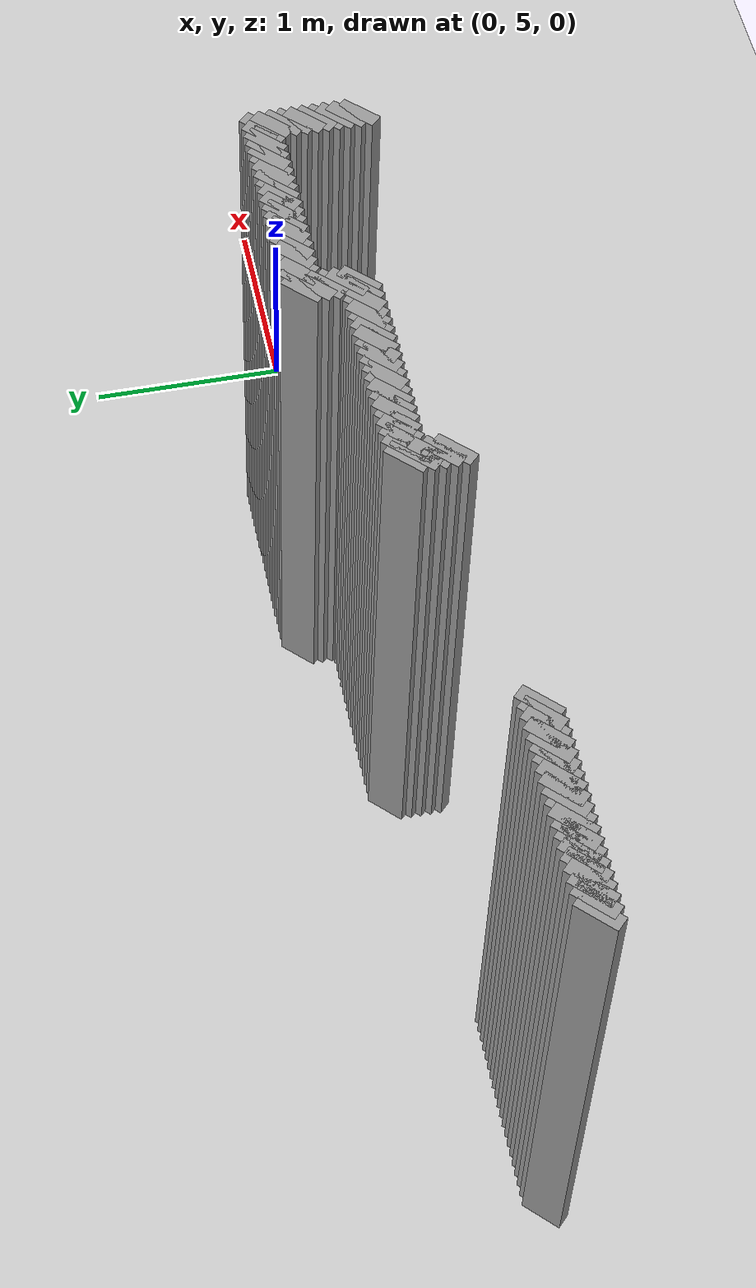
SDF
<sdf version="1.5">
 <world name="default">
  <include><uri>model://ground_plane</uri></include>
  <include><uri>model://sun</uri></include>
  <model name="grey_wall_1">
   <static>1</static>
   <link name="link">
    <pose>-1.875 5.225  1.4 0 0 -0.785398163397</pose>
    <collision name="collision"><geometry><box><size>0.0707106781187 .2  2.8</size></box></geometry></collision>
    <visual name="visual">
     <cast_shadows>0</cast_shadows>
     <geometry><box><size>0.0707106781187 .2  2.8</size></box></geometry>
     <material>
      <script>
       <uri>model://grey_wall/materials/scripts</uri>
       <uri>model://grey_wall/materials/textures</uri>
       <name>vrc/grey_wall</name>
      </script>
     </material>
    </visual>
   </link>
  </model>
  <model name="grey_wall_2">
   <static>1</static>
   <link name="link">
    <pose>-1.825 5.225  1.4 0 0 -0.785398163397</pose>
    <collision name="collision"><geometry><box><size>0.0707106781187 .2  2.8</size></box></geometry></collision>
    <visual name="visual">
     <cast_shadows>0</cast_shadows>
     <geometry><box><size>0.0707106781187 .2  2.8</size></box></geometry>
     <material>
      <script>
       <uri>model://grey_wall/materials/scripts</uri>
       <uri>model://grey_wall/materials/textures</uri>
       <name>vrc/grey_wall</name>
      </script>
     </material>
    </visual>
   </link>
  </model>
  <model name="grey_wall_3">
   <static>1</static>
   <link name="link">
    <pose>-1.775 5.225  1.4 0 0 -0.785398163397</pose>
    <collision name="collision"><geometry><box><size>0.0707106781187 .2  2.8</size></box></geometry></collision>
    <visual name="visual">
     <cast_shadows>0</cast_shadows>
     <geometry><box><size>0.0707106781187 .2  2.8</size></box></geometry>
     <material>
      <script>
       <uri>model://grey_wall/materials/scripts</uri>
       <uri>model://grey_wall/materials/textures</uri>
       <name>vrc/grey_wall</name>
      </script>
     </material>
    </visual>
   </link>
  </model>
  <model name="grey_wall_4">
   <static>1</static>
   <link name="link">
    <pose>-1.725 5.225  1.4 0 0 -0.785398163397</pose>
    <collision name="collision"><geometry><box><size>0.0707106781187 .2  2.8</size></box></geometry></collision>
    <visual name="visual">
     <cast_shadows>0</cast_shadows>
     <geometry><box><size>0.0707106781187 .2  2.8</size></box></geometry>
     <material>
      <script>
       <uri>model://grey_wall/materials/scripts</uri>
       <uri>model://grey_wall/materials/textures</uri>
       <name>vrc/grey_wall</name>
      </script>
     </material>
    </visual>
   </link>
  </model>
  <model name="grey_wall_5">
   <static>1</static>
   <link name="link">
    <pose>-1.675 5.225  1.4 0 0 -0.785398163397</pose>
    <collision name="collision"><geometry><box><size>0.0707106781187 .2  2.8</size></box></geometry></collision>
    <visual name="visual">
     <cast_shadows>0</cast_shadows>
     <geometry><box><size>0.0707106781187 .2  2.8</size></box></geometry>
     <material>
      <script>
       <uri>model://grey_wall/materials/scripts</uri>
       <uri>model://grey_wall/materials/textures</uri>
       <name>vrc/grey_wall</name>
      </script>
     </material>
    </visual>
   </link>
  </model>
  <model name="grey_wall_6">
   <static>1</static>
   <link name="link">
    <pose>-1.625 5.225  1.4 0 0 -0.785398163397</pose>
    <collision name="collision"><geometry><box><size>0.0707106781187 .2  2.8</size></box></geometry></collision>
    <visual name="visual">
     <cast_shadows>0</cast_shadows>
     <geometry><box><size>0.0707106781187 .2  2.8</size></box></geometry>
     <material>
      <script>
       <uri>model://grey_wall/materials/scripts</uri>
       <uri>model://grey_wall/materials/textures</uri>
       <name>vrc/grey_wall</name>
      </script>
     </material>
    </visual>
   </link>
  </model>
  <model name="grey_wall_7">
   <static>1</static>
   <link name="link">
    <pose>-1.575 5.225  1.4 0 0 -0.785398163397</pose>
    <collision name="collision"><geometry><box><size>0.0707106781187 .2  2.8</size></box></geometry></collision>
    <visual name="visual">
     <cast_shadows>0</cast_shadows>
     <geometry><box><size>0.0707106781187 .2  2.8</size></box></geometry>
     <material>
      <script>
       <uri>model://grey_wall/materials/scripts</uri>
       <uri>model://grey_wall/materials/textures</uri>
       <name>vrc/grey_wall</name>
      </script>
     </material>
    </visual>
   </link>
  </model>
  <model name="grey_wall_8">
   <static>1</static>
   <link name="link">
    <pose>-1.525 5.225  1.4 0 0 -0.785398163397</pose>
    <collision name="collision"><geometry><box><size>0.0707106781187 .2  2.8</size></box></geometry></collision>
    <visual name="visual">
     <cast_shadows>0</cast_shadows>
     <geometry><box><size>0.0707106781187 .2  2.8</size></box></geometry>
     <material>
      <script>
       <uri>model://grey_wall/materials/scripts</uri>
       <uri>model://grey_wall/materials/textures</uri>
       <name>vrc/grey_wall</name>
      </script>
     </material>
    </visual>
   </link>
  </model>
  <model name="grey_wall_9">
   <static>1</static>
   <link name="link">
    <pose>-1.475 5.225  1.4 0 0 -0.785398163397</pose>
    <collision name="collision"><geometry><box><size>0.0707106781187 .2  2.8</size></box></geometry></collision>
    <visual name="visual">
     <cast_shadows>0</cast_shadows>
     <geometry><box><size>0.0707106781187 .2  2.8</size></box></geometry>
     <material>
      <script>
       <uri>model://grey_wall/materials/scripts</uri>
       <uri>model://grey_wall/materials/textures</uri>
       <name>vrc/grey_wall</name>
      </script>
     </material>
    </visual>
   </link>
  </model>
  <model name="grey_wall_10">
   <static>1</static>
   <link name="link">
    <pose>-1.425 5.225  1.4 0 0 -0.785398163397</pose>
    <collision name="collision"><geometry><box><size>0.0707106781187 .2  2.8</size></box></geometry></collision>
    <visual name="visual">
     <cast_shadows>0</cast_shadows>
     <geometry><box><size>0.0707106781187 .2  2.8</size></box></geometry>
     <material>
      <script>
       <uri>model://grey_wall/materials/scripts</uri>
       <uri>model://grey_wall/materials/textures</uri>
       <name>vrc/grey_wall</name>
      </script>
     </material>
    </visual>
   </link>
  </model>
  <model name="grey_wall_11">
   <static>1</static>
   <link name="link">
    <pose>-1.375 5.225  1.4 0 0 -0.785398163397</pose>
    <collision name="collision"><geometry><box><size>0.0707106781187 .2  2.8</size></box></geometry></collision>
    <visual name="visual">
     <cast_shadows>0</cast_shadows>
     <geometry><box><size>0.0707106781187 .2  2.8</size></box></geometry>
     <material>
      <script>
       <uri>model://grey_wall/materials/scripts</uri>
       <uri>model://grey_wall/materials/textures</uri>
       <name>vrc/grey_wall</name>
      </script>
     </material>
    </visual>
   </link>
  </model>
  <model name="grey_wall_12">
   <static>1</static>
   <link name="link">
    <pose>-1.325 5.225  1.4 0 0 -0.785398163397</pose>
    <collision name="collision"><geometry><box><size>0.0707106781187 .2  2.8</size></box></geometry></collision>
    <visual name="visual">
     <cast_shadows>0</cast_shadows>
     <geometry><box><size>0.0707106781187 .2  2.8</size></box></geometry>
     <material>
      <script>
       <uri>model://grey_wall/materials/scripts</uri>
       <uri>model://grey_wall/materials/textures</uri>
       <name>vrc/grey_wall</name>
      </script>
     </material>
    </visual>
   </link>
  </model>
  <model name="grey_wall_13">
   <static>1</static>
   <link name="link">
    <pose>-1.275 5.225  1.4 0 0 -0.785398163397</pose>
    <collision name="collision"><geometry><box><size>0.0707106781187 .2  2.8</size></box></geometry></collision>
    <visual name="visual">
     <cast_shadows>0</cast_shadows>
     <geometry><box><size>0.0707106781187 .2  2.8</size></box></geometry>
     <material>
      <script>
       <uri>model://grey_wall/materials/scripts</uri>
       <uri>model://grey_wall/materials/textures</uri>
       <name>vrc/grey_wall</name>
      </script>
     </material>
    </visual>
   </link>
  </model>
  <model name="grey_wall_14">
   <static>1</static>
   <link name="link">
    <pose>-1.225 5.225  1.4 0 0 -0.785398163397</pose>
    <collision name="collision"><geometry><box><size>0.0707106781187 .2  2.8</size></box></geometry></collision>
    <visual name="visual">
     <cast_shadows>0</cast_shadows>
     <geometry><box><size>0.0707106781187 .2  2.8</size></box></geometry>
     <material>
      <script>
       <uri>model://grey_wall/materials/scripts</uri>
       <uri>model://grey_wall/materials/textures</uri>
       <name>vrc/grey_wall</name>
      </script>
     </material>
    </visual>
   </link>
  </model>
  <model name="grey_wall_15">
   <static>1</static>
   <link name="link">
    <pose>-1.175 5.225  1.4 0 0 -0.785398163397</pose>
    <collision name="collision"><geometry><box><size>0.0707106781187 .2  2.8</size></box></geometry></collision>
    <visual name="visual">
     <cast_shadows>0</cast_shadows>
     <geometry><box><size>0.0707106781187 .2  2.8</size></box></geometry>
     <material>
      <script>
       <uri>model://grey_wall/materials/scripts</uri>
       <uri>model://grey_wall/materials/textures</uri>
       <name>vrc/grey_wall</name>
      </script>
     </material>
    </visual>
   </link>
  </model>
  <model name="grey_wall_16">
   <static>1</static>
   <link name="link">
    <pose>-1.125 5.225  1.4 0 0 -0.785398163397</pose>
    <collision name="collision"><geometry><box><size>0.0707106781187 .2  2.8</size></box></geometry></collision>
    <visual name="visual">
     <cast_shadows>0</cast_shadows>
     <geometry><box><size>0.0707106781187 .2  2.8</size></box></geometry>
     <material>
      <script>
       <uri>model://grey_wall/materials/scripts</uri>
       <uri>model://grey_wall/materials/textures</uri>
       <name>vrc/grey_wall</name>
      </script>
     </material>
    </visual>
   </link>
  </model>
  <model name="grey_wall_17">
   <static>1</static>
   <link name="link">
    <pose>-1.075 5.225  1.4 0 0 -0.785398163397</pose>
    <collision name="collision"><geometry><box><size>0.0707106781187 .2  2.8</size></box></geometry></collision>
    <visual name="visual">
     <cast_shadows>0</cast_shadows>
     <geometry><box><size>0.0707106781187 .2  2.8</size></box></geometry>
     <material>
      <script>
       <uri>model://grey_wall/materials/scripts</uri>
       <uri>model://grey_wall/materials/textures</uri>
       <name>vrc/grey_wall</name>
      </script>
     </material>
    </visual>
   </link>
  </model>
  <model name="grey_wall_18">
   <static>1</static>
   <link name="link">
    <pose>-1.025 5.225  1.4 0 0 -0.785398163397</pose>
    <collision name="collision"><geometry><box><size>0.0707106781187 .2  2.8</size></box></geometry></collision>
    <visual name="visual">
     <cast_shadows>0</cast_shadows>
     <geometry><box><size>0.0707106781187 .2  2.8</size></box></geometry>
     <material>
      <script>
       <uri>model://grey_wall/materials/scripts</uri>
       <uri>model://grey_wall/materials/textures</uri>
       <name>vrc/grey_wall</name>
      </script>
     </material>
    </visual>
   </link>
  </model>
  <model name="grey_wall_19">
   <static>1</static>
   <link name="link">
    <pose>-0.975 5.225  1.4 0 0 -0.785398163397</pose>
    <collision name="collision"><geometry><box><size>0.0707106781187 .2  2.8</size></box></geometry></collision>
    <visual name="visual">
     <cast_shadows>0</cast_shadows>
     <geometry><box><size>0.0707106781187 .2  2.8</size></box></geometry>
     <material>
      <script>
       <uri>model://grey_wall/materials/scripts</uri>
       <uri>model://grey_wall/materials/textures</uri>
       <name>vrc/grey_wall</name>
      </script>
     </material>
    </visual>
   </link>
  </model>
  <model name="grey_wall_20">
   <static>1</static>
   <link name="link">
    <pose>-0.925 5.225  1.4 0 0 -0.785398163397</pose>
    <collision name="collision"><geometry><box><size>0.0707106781187 .2  2.8</size></box></geometry></collision>
    <visual name="visual">
     <cast_shadows>0</cast_shadows>
     <geometry><box><size>0.0707106781187 .2  2.8</size></box></geometry>
     <material>
      <script>
       <uri>model://grey_wall/materials/scripts</uri>
       <uri>model://grey_wall/materials/textures</uri>
       <name>vrc/grey_wall</name>
      </script>
     </material>
    </visual>
   </link>
  </model>
  <model name="grey_wall_21">
   <static>1</static>
   <link name="link">
    <pose>-0.875 5.225  1.4 0 0 -0.785398163397</pose>
    <collision name="collision"><geometry><box><size>0.0707106781187 .2  2.8</size></box></geometry></collision>
    <visual name="visual">
     <cast_shadows>0</cast_shadows>
     <geometry><box><size>0.0707106781187 .2  2.8</size></box></geometry>
     <material>
      <script>
       <uri>model://grey_wall/materials/scripts</uri>
       <uri>model://grey_wall/materials/textures</uri>
       <name>vrc/grey_wall</name>
      </script>
     </material>
    </visual>
   </link>
  </model>
  <model name="grey_wall_22">
   <static>1</static>
   <link name="link">
    <pose>-1.875 5.175  1.4 0 0 -0.785398163397</pose>
    <collision name="collision"><geometry><box><size>0.0707106781187 .2  2.8</size></box></geometry></collision>
    <visual name="visual">
     <cast_shadows>0</cast_shadows>
     <geometry><box><size>0.0707106781187 .2  2.8</size></box></geometry>
     <material>
      <script>
       <uri>model://grey_wall/materials/scripts</uri>
       <uri>model://grey_wall/materials/textures</uri>
       <name>vrc/grey_wall</name>
      </script>
     </material>
    </visual>
   </link>
  </model>
  <model name="grey_wall_23">
   <static>1</static>
   <link name="link">
    <pose>-0.875 5.175  1.4 0 0 -0.785398163397</pose>
    <collision name="collision"><geometry><box><size>0.0707106781187 .2  2.8</size></box></geometry></collision>
    <visual name="visual">
     <cast_shadows>0</cast_shadows>
     <geometry><box><size>0.0707106781187 .2  2.8</size></box></geometry>
     <material>
      <script>
       <uri>model://grey_wall/materials/scripts</uri>
       <uri>model://grey_wall/materials/textures</uri>
       <name>vrc/grey_wall</name>
      </script>
     </material>
    </visual>
   </link>
  </model>
  <model name="grey_wall_24">
   <static>1</static>
   <link name="link">
    <pose>-1.875 5.125  1.4 0 0 -0.785398163397</pose>
    <collision name="collision"><geometry><box><size>0.0707106781187 .2  2.8</size></box></geometry></collision>
    <visual name="visual">
     <cast_shadows>0</cast_shadows>
     <geometry><box><size>0.0707106781187 .2  2.8</size></box></geometry>
     <material>
      <script>
       <uri>model://grey_wall/materials/scripts</uri>
       <uri>model://grey_wall/materials/textures</uri>
       <name>vrc/grey_wall</name>
      </script>
     </material>
    </visual>
   </link>
  </model>
  <model name="grey_wall_25">
   <static>1</static>
   <link name="link">
    <pose>-0.875 5.125  1.4 0 0 -0.785398163397</pose>
    <collision name="collision"><geometry><box><size>0.0707106781187 .2  2.8</size></box></geometry></collision>
    <visual name="visual">
     <cast_shadows>0</cast_shadows>
     <geometry><box><size>0.0707106781187 .2  2.8</size></box></geometry>
     <material>
      <script>
       <uri>model://grey_wall/materials/scripts</uri>
       <uri>model://grey_wall/materials/textures</uri>
       <name>vrc/grey_wall</name>
      </script>
     </material>
    </visual>
   </link>
  </model>
  <model name="grey_wall_26">
   <static>1</static>
   <link name="link">
    <pose>-1.875 5.075  1.4 0 0 -0.785398163397</pose>
    <collision name="collision"><geometry><box><size>0.0707106781187 .2  2.8</size></box></geometry></collision>
    <visual name="visual">
     <cast_shadows>0</cast_shadows>
     <geometry><box><size>0.0707106781187 .2  2.8</size></box></geometry>
     <material>
      <script>
       <uri>model://grey_wall/materials/scripts</uri>
       <uri>model://grey_wall/materials/textures</uri>
       <name>vrc/grey_wall</name>
      </script>
     </material>
    </visual>
   </link>
  </model>
  <model name="grey_wall_27">
   <static>1</static>
   <link name="link">
    <pose>-0.875 5.075  1.4 0 0 -0.785398163397</pose>
    <collision name="collision"><geometry><box><size>0.0707106781187 .2  2.8</size></box></geometry></collision>
    <visual name="visual">
     <cast_shadows>0</cast_shadows>
     <geometry><box><size>0.0707106781187 .2  2.8</size></box></geometry>
     <material>
      <script>
       <uri>model://grey_wall/materials/scripts</uri>
       <uri>model://grey_wall/materials/textures</uri>
       <name>vrc/grey_wall</name>
      </script>
     </material>
    </visual>
   </link>
  </model>
  <model name="grey_wall_28">
   <static>1</static>
   <link name="link">
    <pose>-1.875 5.025  1.4 0 0 -0.785398163397</pose>
    <collision name="collision"><geometry><box><size>0.0707106781187 .2  2.8</size></box></geometry></collision>
    <visual name="visual">
     <cast_shadows>0</cast_shadows>
     <geometry><box><size>0.0707106781187 .2  2.8</size></box></geometry>
     <material>
      <script>
       <uri>model://grey_wall/materials/scripts</uri>
       <uri>model://grey_wall/materials/textures</uri>
       <name>vrc/grey_wall</name>
      </script>
     </material>
    </visual>
   </link>
  </model>
  <model name="grey_wall_29">
   <static>1</static>
   <link name="link">
    <pose>-0.875 5.025  1.4 0 0 -0.785398163397</pose>
    <collision name="collision"><geometry><box><size>0.0707106781187 .2  2.8</size></box></geometry></collision>
    <visual name="visual">
     <cast_shadows>0</cast_shadows>
     <geometry><box><size>0.0707106781187 .2  2.8</size></box></geometry>
     <material>
      <script>
       <uri>model://grey_wall/materials/scripts</uri>
       <uri>model://grey_wall/materials/textures</uri>
       <name>vrc/grey_wall</name>
      </script>
     </material>
    </visual>
   </link>
  </model>
  <model name="grey_wall_30">
   <static>1</static>
   <link name="link">
    <pose>-2.875 4.975  1.4 0 0 -0.785398163397</pose>
    <collision name="collision"><geometry><box><size>0.0707106781187 .2  2.8</size></box></geometry></collision>
    <visual name="visual">
     <cast_shadows>0</cast_shadows>
     <geometry><box><size>0.0707106781187 .2  2.8</size></box></geometry>
     <material>
      <script>
       <uri>model://grey_wall/materials/scripts</uri>
       <uri>model://grey_wall/materials/textures</uri>
       <name>vrc/grey_wall</name>
      </script>
     </material>
    </visual>
   </link>
  </model>
  <model name="grey_wall_31">
   <static>1</static>
   <link name="link">
    <pose>-2.825 4.975  1.4 0 0 -0.785398163397</pose>
    <collision name="collision"><geometry><box><size>0.0707106781187 .2  2.8</size></box></geometry></collision>
    <visual name="visual">
     <cast_shadows>0</cast_shadows>
     <geometry><box><size>0.0707106781187 .2  2.8</size></box></geometry>
     <material>
      <script>
       <uri>model://grey_wall/materials/scripts</uri>
       <uri>model://grey_wall/materials/textures</uri>
       <name>vrc/grey_wall</name>
      </script>
     </material>
    </visual>
   </link>
  </model>
  <model name="grey_wall_32">
   <static>1</static>
   <link name="link">
    <pose>-2.775 4.975  1.4 0 0 -0.785398163397</pose>
    <collision name="collision"><geometry><box><size>0.0707106781187 .2  2.8</size></box></geometry></collision>
    <visual name="visual">
     <cast_shadows>0</cast_shadows>
     <geometry><box><size>0.0707106781187 .2  2.8</size></box></geometry>
     <material>
      <script>
       <uri>model://grey_wall/materials/scripts</uri>
       <uri>model://grey_wall/materials/textures</uri>
       <name>vrc/grey_wall</name>
      </script>
     </material>
    </visual>
   </link>
  </model>
  <model name="grey_wall_33">
   <static>1</static>
   <link name="link">
    <pose>-2.725 4.975  1.4 0 0 -0.785398163397</pose>
    <collision name="collision"><geometry><box><size>0.0707106781187 .2  2.8</size></box></geometry></collision>
    <visual name="visual">
     <cast_shadows>0</cast_shadows>
     <geometry><box><size>0.0707106781187 .2  2.8</size></box></geometry>
     <material>
      <script>
       <uri>model://grey_wall/materials/scripts</uri>
       <uri>model://grey_wall/materials/textures</uri>
       <name>vrc/grey_wall</name>
      </script>
     </material>
    </visual>
   </link>
  </model>
  <model name="grey_wall_34">
   <static>1</static>
   <link name="link">
    <pose>-2.675 4.975  1.4 0 0 -0.785398163397</pose>
    <collision name="collision"><geometry><box><size>0.0707106781187 .2  2.8</size></box></geometry></collision>
    <visual name="visual">
     <cast_shadows>0</cast_shadows>
     <geometry><box><size>0.0707106781187 .2  2.8</size></box></geometry>
     <material>
      <script>
       <uri>model://grey_wall/materials/scripts</uri>
       <uri>model://grey_wall/materials/textures</uri>
       <name>vrc/grey_wall</name>
      </script>
     </material>
    </visual>
   </link>
  </model>
  <model name="grey_wall_35">
   <static>1</static>
   <link name="link">
    <pose>-2.625 4.975  1.4 0 0 -0.785398163397</pose>
    <collision name="collision"><geometry><box><size>0.0707106781187 .2  2.8</size></box></geometry></collision>
    <visual name="visual">
     <cast_shadows>0</cast_shadows>
     <geometry><box><size>0.0707106781187 .2  2.8</size></box></geometry>
     <material>
      <script>
       <uri>model://grey_wall/materials/scripts</uri>
       <uri>model://grey_wall/materials/textures</uri>
       <name>vrc/grey_wall</name>
      </script>
     </material>
    </visual>
   </link>
  </model>
  <model name="grey_wall_36">
   <static>1</static>
   <link name="link">
    <pose>-2.575 4.975  1.4 0 0 -0.785398163397</pose>
    <collision name="collision"><geometry><box><size>0.0707106781187 .2  2.8</size></box></geometry></collision>
    <visual name="visual">
     <cast_shadows>0</cast_shadows>
     <geometry><box><size>0.0707106781187 .2  2.8</size></box></geometry>
     <material>
      <script>
       <uri>model://grey_wall/materials/scripts</uri>
       <uri>model://grey_wall/materials/textures</uri>
       <name>vrc/grey_wall</name>
      </script>
     </material>
    </visual>
   </link>
  </model>
  <model name="grey_wall_37">
   <static>1</static>
   <link name="link">
    <pose>-2.525 4.975  1.4 0 0 -0.785398163397</pose>
    <collision name="collision"><geometry><box><size>0.0707106781187 .2  2.8</size></box></geometry></collision>
    <visual name="visual">
     <cast_shadows>0</cast_shadows>
     <geometry><box><size>0.0707106781187 .2  2.8</size></box></geometry>
     <material>
      <script>
       <uri>model://grey_wall/materials/scripts</uri>
       <uri>model://grey_wall/materials/textures</uri>
       <name>vrc/grey_wall</name>
      </script>
     </material>
    </visual>
   </link>
  </model>
  <model name="grey_wall_38">
   <static>1</static>
   <link name="link">
    <pose>-2.475 4.975  1.4 0 0 -0.785398163397</pose>
    <collision name="collision"><geometry><box><size>0.0707106781187 .2  2.8</size></box></geometry></collision>
    <visual name="visual">
     <cast_shadows>0</cast_shadows>
     <geometry><box><size>0.0707106781187 .2  2.8</size></box></geometry>
     <material>
      <script>
       <uri>model://grey_wall/materials/scripts</uri>
       <uri>model://grey_wall/materials/textures</uri>
       <name>vrc/grey_wall</name>
      </script>
     </material>
    </visual>
   </link>
  </model>
  <model name="grey_wall_39">
   <static>1</static>
   <link name="link">
    <pose>-2.425 4.975  1.4 0 0 -0.785398163397</pose>
    <collision name="collision"><geometry><box><size>0.0707106781187 .2  2.8</size></box></geometry></collision>
    <visual name="visual">
     <cast_shadows>0</cast_shadows>
     <geometry><box><size>0.0707106781187 .2  2.8</size></box></geometry>
     <material>
      <script>
       <uri>model://grey_wall/materials/scripts</uri>
       <uri>model://grey_wall/materials/textures</uri>
       <name>vrc/grey_wall</name>
      </script>
     </material>
    </visual>
   </link>
  </model>
  <model name="grey_wall_40">
   <static>1</static>
   <link name="link">
    <pose>-2.375 4.975  1.4 0 0 -0.785398163397</pose>
    <collision name="collision"><geometry><box><size>0.0707106781187 .2  2.8</size></box></geometry></collision>
    <visual name="visual">
     <cast_shadows>0</cast_shadows>
     <geometry><box><size>0.0707106781187 .2  2.8</size></box></geometry>
     <material>
      <script>
       <uri>model://grey_wall/materials/scripts</uri>
       <uri>model://grey_wall/materials/textures</uri>
       <name>vrc/grey_wall</name>
      </script>
     </material>
    </visual>
   </link>
  </model>
  <model name="grey_wall_41">
   <static>1</static>
   <link name="link">
    <pose>-2.325 4.975  1.4 0 0 -0.785398163397</pose>
    <collision name="collision"><geometry><box><size>0.0707106781187 .2  2.8</size></box></geometry></collision>
    <visual name="visual">
     <cast_shadows>0</cast_shadows>
     <geometry><box><size>0.0707106781187 .2  2.8</size></box></geometry>
     <material>
      <script>
       <uri>model://grey_wall/materials/scripts</uri>
       <uri>model://grey_wall/materials/textures</uri>
       <name>vrc/grey_wall</name>
      </script>
     </material>
    </visual>
   </link>
  </model>
  <model name="grey_wall_42">
   <static>1</static>
   <link name="link">
    <pose>-2.275 4.975  1.4 0 0 -0.785398163397</pose>
    <collision name="collision"><geometry><box><size>0.0707106781187 .2  2.8</size></box></geometry></collision>
    <visual name="visual">
     <cast_shadows>0</cast_shadows>
     <geometry><box><size>0.0707106781187 .2  2.8</size></box></geometry>
     <material>
      <script>
       <uri>model://grey_wall/materials/scripts</uri>
       <uri>model://grey_wall/materials/textures</uri>
       <name>vrc/grey_wall</name>
      </script>
     </material>
    </visual>
   </link>
  </model>
  <model name="grey_wall_43">
   <static>1</static>
   <link name="link">
    <pose>-2.225 4.975  1.4 0 0 -0.785398163397</pose>
    <collision name="collision"><geometry><box><size>0.0707106781187 .2  2.8</size></box></geometry></collision>
    <visual name="visual">
     <cast_shadows>0</cast_shadows>
     <geometry><box><size>0.0707106781187 .2  2.8</size></box></geometry>
     <material>
      <script>
       <uri>model://grey_wall/materials/scripts</uri>
       <uri>model://grey_wall/materials/textures</uri>
       <name>vrc/grey_wall</name>
      </script>
     </material>
    </visual>
   </link>
  </model>
  <model name="grey_wall_44">
   <static>1</static>
   <link name="link">
    <pose>-2.175 4.975  1.4 0 0 -0.785398163397</pose>
    <collision name="collision"><geometry><box><size>0.0707106781187 .2  2.8</size></box></geometry></collision>
    <visual name="visual">
     <cast_shadows>0</cast_shadows>
     <geometry><box><size>0.0707106781187 .2  2.8</size></box></geometry>
     <material>
      <script>
       <uri>model://grey_wall/materials/scripts</uri>
       <uri>model://grey_wall/materials/textures</uri>
       <name>vrc/grey_wall</name>
      </script>
     </material>
    </visual>
   </link>
  </model>
  <model name="grey_wall_45">
   <static>1</static>
   <link name="link">
    <pose>-2.125 4.975  1.4 0 0 -0.785398163397</pose>
    <collision name="collision"><geometry><box><size>0.0707106781187 .2  2.8</size></box></geometry></collision>
    <visual name="visual">
     <cast_shadows>0</cast_shadows>
     <geometry><box><size>0.0707106781187 .2  2.8</size></box></geometry>
     <material>
      <script>
       <uri>model://grey_wall/materials/scripts</uri>
       <uri>model://grey_wall/materials/textures</uri>
       <name>vrc/grey_wall</name>
      </script>
     </material>
    </visual>
   </link>
  </model>
  <model name="grey_wall_46">
   <static>1</static>
   <link name="link">
    <pose>-2.075 4.975  1.4 0 0 -0.785398163397</pose>
    <collision name="collision"><geometry><box><size>0.0707106781187 .2  2.8</size></box></geometry></collision>
    <visual name="visual">
     <cast_shadows>0</cast_shadows>
     <geometry><box><size>0.0707106781187 .2  2.8</size></box></geometry>
     <material>
      <script>
       <uri>model://grey_wall/materials/scripts</uri>
       <uri>model://grey_wall/materials/textures</uri>
       <name>vrc/grey_wall</name>
      </script>
     </material>
    </visual>
   </link>
  </model>
  <model name="grey_wall_47">
   <static>1</static>
   <link name="link">
    <pose>-2.025 4.975  1.4 0 0 -0.785398163397</pose>
    <collision name="collision"><geometry><box><size>0.0707106781187 .2  2.8</size></box></geometry></collision>
    <visual name="visual">
     <cast_shadows>0</cast_shadows>
     <geometry><box><size>0.0707106781187 .2  2.8</size></box></geometry>
     <material>
      <script>
       <uri>model://grey_wall/materials/scripts</uri>
       <uri>model://grey_wall/materials/textures</uri>
       <name>vrc/grey_wall</name>
      </script>
     </material>
    </visual>
   </link>
  </model>
  <model name="grey_wall_48">
   <static>1</static>
   <link name="link">
    <pose>-1.975 4.975  1.4 0 0 -0.785398163397</pose>
    <collision name="collision"><geometry><box><size>0.0707106781187 .2  2.8</size></box></geometry></collision>
    <visual name="visual">
     <cast_shadows>0</cast_shadows>
     <geometry><box><size>0.0707106781187 .2  2.8</size></box></geometry>
     <material>
      <script>
       <uri>model://grey_wall/materials/scripts</uri>
       <uri>model://grey_wall/materials/textures</uri>
       <name>vrc/grey_wall</name>
      </script>
     </material>
    </visual>
   </link>
  </model>
  <model name="grey_wall_49">
   <static>1</static>
   <link name="link">
    <pose>-1.925 4.975  1.4 0 0 -0.785398163397</pose>
    <collision name="collision"><geometry><box><size>0.0707106781187 .2  2.8</size></box></geometry></collision>
    <visual name="visual">
     <cast_shadows>0</cast_shadows>
     <geometry><box><size>0.0707106781187 .2  2.8</size></box></geometry>
     <material>
      <script>
       <uri>model://grey_wall/materials/scripts</uri>
       <uri>model://grey_wall/materials/textures</uri>
       <name>vrc/grey_wall</name>
      </script>
     </material>
    </visual>
   </link>
  </model>
  <model name="grey_wall_50">
   <static>1</static>
   <link name="link">
    <pose>-1.875 4.975  1.4 0 0 -0.785398163397</pose>
    <collision name="collision"><geometry><box><size>0.0707106781187 .2  2.8</size></box></geometry></collision>
    <visual name="visual">
     <cast_shadows>0</cast_shadows>
     <geometry><box><size>0.0707106781187 .2  2.8</size></box></geometry>
     <material>
      <script>
       <uri>model://grey_wall/materials/scripts</uri>
       <uri>model://grey_wall/materials/textures</uri>
       <name>vrc/grey_wall</name>
      </script>
     </material>
    </visual>
   </link>
  </model>
  <model name="grey_wall_51">
   <static>1</static>
   <link name="link">
    <pose>-0.875 4.975  1.4 0 0 -0.785398163397</pose>
    <collision name="collision"><geometry><box><size>0.0707106781187 .2  2.8</size></box></geometry></collision>
    <visual name="visual">
     <cast_shadows>0</cast_shadows>
     <geometry><box><size>0.0707106781187 .2  2.8</size></box></geometry>
     <material>
      <script>
       <uri>model://grey_wall/materials/scripts</uri>
       <uri>model://grey_wall/materials/textures</uri>
       <name>vrc/grey_wall</name>
      </script>
     </material>
    </visual>
   </link>
  </model>
  <model name="grey_wall_52">
   <static>1</static>
   <link name="link">
    <pose>-2.875 4.925  1.4 0 0 -0.785398163397</pose>
    <collision name="collision"><geometry><box><size>0.0707106781187 .2  2.8</size></box></geometry></collision>
    <visual name="visual">
     <cast_shadows>0</cast_shadows>
     <geometry><box><size>0.0707106781187 .2  2.8</size></box></geometry>
     <material>
      <script>
       <uri>model://grey_wall/materials/scripts</uri>
       <uri>model://grey_wall/materials/textures</uri>
       <name>vrc/grey_wall</name>
      </script>
     </material>
    </visual>
   </link>
  </model>
  <model name="grey_wall_53">
   <static>1</static>
   <link name="link">
    <pose>-0.875 4.925  1.4 0 0 -0.785398163397</pose>
    <collision name="collision"><geometry><box><size>0.0707106781187 .2  2.8</size></box></geometry></collision>
    <visual name="visual">
     <cast_shadows>0</cast_shadows>
     <geometry><box><size>0.0707106781187 .2  2.8</size></box></geometry>
     <material>
      <script>
       <uri>model://grey_wall/materials/scripts</uri>
       <uri>model://grey_wall/materials/textures</uri>
       <name>vrc/grey_wall</name>
      </script>
     </material>
    </visual>
   </link>
  </model>
  <model name="grey_wall_54">
   <static>1</static>
   <link name="link">
    <pose>-2.875 4.875  1.4 0 0 -0.785398163397</pose>
    <collision name="collision"><geometry><box><size>0.0707106781187 .2  2.8</size></box></geometry></collision>
    <visual name="visual">
     <cast_shadows>0</cast_shadows>
     <geometry><box><size>0.0707106781187 .2  2.8</size></box></geometry>
     <material>
      <script>
       <uri>model://grey_wall/materials/scripts</uri>
       <uri>model://grey_wall/materials/textures</uri>
       <name>vrc/grey_wall</name>
      </script>
     </material>
    </visual>
   </link>
  </model>
  <model name="grey_wall_55">
   <static>1</static>
   <link name="link">
    <pose>-0.875 4.875  1.4 0 0 -0.785398163397</pose>
    <collision name="collision"><geometry><box><size>0.0707106781187 .2  2.8</size></box></geometry></collision>
    <visual name="visual">
     <cast_shadows>0</cast_shadows>
     <geometry><box><size>0.0707106781187 .2  2.8</size></box></geometry>
     <material>
      <script>
       <uri>model://grey_wall/materials/scripts</uri>
       <uri>model://grey_wall/materials/textures</uri>
       <name>vrc/grey_wall</name>
      </script>
     </material>
    </visual>
   </link>
  </model>
  <model name="grey_wall_56">
   <static>1</static>
   <link name="link">
    <pose>-2.875 4.825  1.4 0 0 -0.785398163397</pose>
    <collision name="collision"><geometry><box><size>0.0707106781187 .2  2.8</size></box></geometry></collision>
    <visual name="visual">
     <cast_shadows>0</cast_shadows>
     <geometry><box><size>0.0707106781187 .2  2.8</size></box></geometry>
     <material>
      <script>
       <uri>model://grey_wall/materials/scripts</uri>
       <uri>model://grey_wall/materials/textures</uri>
       <name>vrc/grey_wall</name>
      </script>
     </material>
    </visual>
   </link>
  </model>
  <model name="grey_wall_57">
   <static>1</static>
   <link name="link">
    <pose>-0.875 4.825  1.4 0 0 -0.785398163397</pose>
    <collision name="collision"><geometry><box><size>0.0707106781187 .2  2.8</size></box></geometry></collision>
    <visual name="visual">
     <cast_shadows>0</cast_shadows>
     <geometry><box><size>0.0707106781187 .2  2.8</size></box></geometry>
     <material>
      <script>
       <uri>model://grey_wall/materials/scripts</uri>
       <uri>model://grey_wall/materials/textures</uri>
       <name>vrc/grey_wall</name>
      </script>
     </material>
    </visual>
   </link>
  </model>
  <model name="grey_wall_58">
   <static>1</static>
   <link name="link">
    <pose>-2.875 4.775  1.4 0 0 -0.785398163397</pose>
    <collision name="collision"><geometry><box><size>0.0707106781187 .2  2.8</size></box></geometry></collision>
    <visual name="visual">
     <cast_shadows>0</cast_shadows>
     <geometry><box><size>0.0707106781187 .2  2.8</size></box></geometry>
     <material>
      <script>
       <uri>model://grey_wall/materials/scripts</uri>
       <uri>model://grey_wall/materials/textures</uri>
       <name>vrc/grey_wall</name>
      </script>
     </material>
    </visual>
   </link>
  </model>
  <model name="grey_wall_59">
   <static>1</static>
   <link name="link">
    <pose>-0.875 4.775  1.4 0 0 -0.785398163397</pose>
    <collision name="collision"><geometry><box><size>0.0707106781187 .2  2.8</size></box></geometry></collision>
    <visual name="visual">
     <cast_shadows>0</cast_shadows>
     <geometry><box><size>0.0707106781187 .2  2.8</size></box></geometry>
     <material>
      <script>
       <uri>model://grey_wall/materials/scripts</uri>
       <uri>model://grey_wall/materials/textures</uri>
       <name>vrc/grey_wall</name>
      </script>
     </material>
    </visual>
   </link>
  </model>
  <model name="grey_wall_60">
   <static>1</static>
   <link name="link">
    <pose>-5.125 4.725  1.4 0 0 -0.785398163397</pose>
    <collision name="collision"><geometry><box><size>0.0707106781187 .2  2.8</size></box></geometry></collision>
    <visual name="visual">
     <cast_shadows>0</cast_shadows>
     <geometry><box><size>0.0707106781187 .2  2.8</size></box></geometry>
     <material>
      <script>
       <uri>model://grey_wall/materials/scripts</uri>
       <uri>model://grey_wall/materials/textures</uri>
       <name>vrc/grey_wall</name>
      </script>
     </material>
    </visual>
   </link>
  </model>
  <model name="grey_wall_61">
   <static>1</static>
   <link name="link">
    <pose>-5.075 4.725  1.4 0 0 -0.785398163397</pose>
    <collision name="collision"><geometry><box><size>0.0707106781187 .2  2.8</size></box></geometry></collision>
    <visual name="visual">
     <cast_shadows>0</cast_shadows>
     <geometry><box><size>0.0707106781187 .2  2.8</size></box></geometry>
     <material>
      <script>
       <uri>model://grey_wall/materials/scripts</uri>
       <uri>model://grey_wall/materials/textures</uri>
       <name>vrc/grey_wall</name>
      </script>
     </material>
    </visual>
   </link>
  </model>
  <model name="grey_wall_62">
   <static>1</static>
   <link name="link">
    <pose>-5.025 4.725  1.4 0 0 -0.785398163397</pose>
    <collision name="collision"><geometry><box><size>0.0707106781187 .2  2.8</size></box></geometry></collision>
    <visual name="visual">
     <cast_shadows>0</cast_shadows>
     <geometry><box><size>0.0707106781187 .2  2.8</size></box></geometry>
     <material>
      <script>
       <uri>model://grey_wall/materials/scripts</uri>
       <uri>model://grey_wall/materials/textures</uri>
       <name>vrc/grey_wall</name>
      </script>
     </material>
    </visual>
   </link>
  </model>
  <model name="grey_wall_63">
   <static>1</static>
   <link name="link">
    <pose>-4.975 4.725  1.4 0 0 -0.785398163397</pose>
    <collision name="collision"><geometry><box><size>0.0707106781187 .2  2.8</size></box></geometry></collision>
    <visual name="visual">
     <cast_shadows>0</cast_shadows>
     <geometry><box><size>0.0707106781187 .2  2.8</size></box></geometry>
     <material>
      <script>
       <uri>model://grey_wall/materials/scripts</uri>
       <uri>model://grey_wall/materials/textures</uri>
       <name>vrc/grey_wall</name>
      </script>
     </material>
    </visual>
   </link>
  </model>
  <model name="grey_wall_64">
   <static>1</static>
   <link name="link">
    <pose>-4.925 4.725  1.4 0 0 -0.785398163397</pose>
    <collision name="collision"><geometry><box><size>0.0707106781187 .2  2.8</size></box></geometry></collision>
    <visual name="visual">
     <cast_shadows>0</cast_shadows>
     <geometry><box><size>0.0707106781187 .2  2.8</size></box></geometry>
     <material>
      <script>
       <uri>model://grey_wall/materials/scripts</uri>
       <uri>model://grey_wall/materials/textures</uri>
       <name>vrc/grey_wall</name>
      </script>
     </material>
    </visual>
   </link>
  </model>
  <model name="grey_wall_65">
   <static>1</static>
   <link name="link">
    <pose>-4.875 4.725  1.4 0 0 -0.785398163397</pose>
    <collision name="collision"><geometry><box><size>0.0707106781187 .2  2.8</size></box></geometry></collision>
    <visual name="visual">
     <cast_shadows>0</cast_shadows>
     <geometry><box><size>0.0707106781187 .2  2.8</size></box></geometry>
     <material>
      <script>
       <uri>model://grey_wall/materials/scripts</uri>
       <uri>model://grey_wall/materials/textures</uri>
       <name>vrc/grey_wall</name>
      </script>
     </material>
    </visual>
   </link>
  </model>
  <model name="grey_wall_66">
   <static>1</static>
   <link name="link">
    <pose>-4.825 4.725  1.4 0 0 -0.785398163397</pose>
    <collision name="collision"><geometry><box><size>0.0707106781187 .2  2.8</size></box></geometry></collision>
    <visual name="visual">
     <cast_shadows>0</cast_shadows>
     <geometry><box><size>0.0707106781187 .2  2.8</size></box></geometry>
     <material>
      <script>
       <uri>model://grey_wall/materials/scripts</uri>
       <uri>model://grey_wall/materials/textures</uri>
       <name>vrc/grey_wall</name>
      </script>
     </material>
    </visual>
   </link>
  </model>
  <model name="grey_wall_67">
   <static>1</static>
   <link name="link">
    <pose>-4.775 4.725  1.4 0 0 -0.785398163397</pose>
    <collision name="collision"><geometry><box><size>0.0707106781187 .2  2.8</size></box></geometry></collision>
    <visual name="visual">
     <cast_shadows>0</cast_shadows>
     <geometry><box><size>0.0707106781187 .2  2.8</size></box></geometry>
     <material>
      <script>
       <uri>model://grey_wall/materials/scripts</uri>
       <uri>model://grey_wall/materials/textures</uri>
       <name>vrc/grey_wall</name>
      </script>
     </material>
    </visual>
   </link>
  </model>
  <model name="grey_wall_68">
   <static>1</static>
   <link name="link">
    <pose>-4.725 4.725  1.4 0 0 -0.785398163397</pose>
    <collision name="collision"><geometry><box><size>0.0707106781187 .2  2.8</size></box></geometry></collision>
    <visual name="visual">
     <cast_shadows>0</cast_shadows>
     <geometry><box><size>0.0707106781187 .2  2.8</size></box></geometry>
     <material>
      <script>
       <uri>model://grey_wall/materials/scripts</uri>
       <uri>model://grey_wall/materials/textures</uri>
       <name>vrc/grey_wall</name>
      </script>
     </material>
    </visual>
   </link>
  </model>
  <model name="grey_wall_69">
   <static>1</static>
   <link name="link">
    <pose>-4.675 4.725  1.4 0 0 -0.785398163397</pose>
    <collision name="collision"><geometry><box><size>0.0707106781187 .2  2.8</size></box></geometry></collision>
    <visual name="visual">
     <cast_shadows>0</cast_shadows>
     <geometry><box><size>0.0707106781187 .2  2.8</size></box></geometry>
     <material>
      <script>
       <uri>model://grey_wall/materials/scripts</uri>
       <uri>model://grey_wall/materials/textures</uri>
       <name>vrc/grey_wall</name>
      </script>
     </material>
    </visual>
   </link>
  </model>
  <model name="grey_wall_70">
   <static>1</static>
   <link name="link">
    <pose>-4.625 4.725  1.4 0 0 -0.785398163397</pose>
    <collision name="collision"><geometry><box><size>0.0707106781187 .2  2.8</size></box></geometry></collision>
    <visual name="visual">
     <cast_shadows>0</cast_shadows>
     <geometry><box><size>0.0707106781187 .2  2.8</size></box></geometry>
     <material>
      <script>
       <uri>model://grey_wall/materials/scripts</uri>
       <uri>model://grey_wall/materials/textures</uri>
       <name>vrc/grey_wall</name>
      </script>
     </material>
    </visual>
   </link>
  </model>
  <model name="grey_wall_71">
   <static>1</static>
   <link name="link">
    <pose>-4.575 4.725  1.4 0 0 -0.785398163397</pose>
    <collision name="collision"><geometry><box><size>0.0707106781187 .2  2.8</size></box></geometry></collision>
    <visual name="visual">
     <cast_shadows>0</cast_shadows>
     <geometry><box><size>0.0707106781187 .2  2.8</size></box></geometry>
     <material>
      <script>
       <uri>model://grey_wall/materials/scripts</uri>
       <uri>model://grey_wall/materials/textures</uri>
       <name>vrc/grey_wall</name>
      </script>
     </material>
    </visual>
   </link>
  </model>
  <model name="grey_wall_72">
   <static>1</static>
   <link name="link">
    <pose>-4.525 4.725  1.4 0 0 -0.785398163397</pose>
    <collision name="collision"><geometry><box><size>0.0707106781187 .2  2.8</size></box></geometry></collision>
    <visual name="visual">
     <cast_shadows>0</cast_shadows>
     <geometry><box><size>0.0707106781187 .2  2.8</size></box></geometry>
     <material>
      <script>
       <uri>model://grey_wall/materials/scripts</uri>
       <uri>model://grey_wall/materials/textures</uri>
       <name>vrc/grey_wall</name>
      </script>
     </material>
    </visual>
   </link>
  </model>
  <model name="grey_wall_73">
   <static>1</static>
   <link name="link">
    <pose>-4.475 4.725  1.4 0 0 -0.785398163397</pose>
    <collision name="collision"><geometry><box><size>0.0707106781187 .2  2.8</size></box></geometry></collision>
    <visual name="visual">
     <cast_shadows>0</cast_shadows>
     <geometry><box><size>0.0707106781187 .2  2.8</size></box></geometry>
     <material>
      <script>
       <uri>model://grey_wall/materials/scripts</uri>
       <uri>model://grey_wall/materials/textures</uri>
       <name>vrc/grey_wall</name>
      </script>
     </material>
    </visual>
   </link>
  </model>
  <model name="grey_wall_74">
   <static>1</static>
   <link name="link">
    <pose>-4.425 4.725  1.4 0 0 -0.785398163397</pose>
    <collision name="collision"><geometry><box><size>0.0707106781187 .2  2.8</size></box></geometry></collision>
    <visual name="visual">
     <cast_shadows>0</cast_shadows>
     <geometry><box><size>0.0707106781187 .2  2.8</size></box></geometry>
     <material>
      <script>
       <uri>model://grey_wall/materials/scripts</uri>
       <uri>model://grey_wall/materials/textures</uri>
       <name>vrc/grey_wall</name>
      </script>
     </material>
    </visual>
   </link>
  </model>
  <model name="grey_wall_75">
   <static>1</static>
   <link name="link">
    <pose>-4.375 4.725  1.4 0 0 -0.785398163397</pose>
    <collision name="collision"><geometry><box><size>0.0707106781187 .2  2.8</size></box></geometry></collision>
    <visual name="visual">
     <cast_shadows>0</cast_shadows>
     <geometry><box><size>0.0707106781187 .2  2.8</size></box></geometry>
     <material>
      <script>
       <uri>model://grey_wall/materials/scripts</uri>
       <uri>model://grey_wall/materials/textures</uri>
       <name>vrc/grey_wall</name>
      </script>
     </material>
    </visual>
   </link>
  </model>
  <model name="grey_wall_76">
   <static>1</static>
   <link name="link">
    <pose>-4.325 4.725  1.4 0 0 -0.785398163397</pose>
    <collision name="collision"><geometry><box><size>0.0707106781187 .2  2.8</size></box></geometry></collision>
    <visual name="visual">
     <cast_shadows>0</cast_shadows>
     <geometry><box><size>0.0707106781187 .2  2.8</size></box></geometry>
     <material>
      <script>
       <uri>model://grey_wall/materials/scripts</uri>
       <uri>model://grey_wall/materials/textures</uri>
       <name>vrc/grey_wall</name>
      </script>
     </material>
    </visual>
   </link>
  </model>
  <model name="grey_wall_77">
   <static>1</static>
   <link name="link">
    <pose>-4.275 4.725  1.4 0 0 -0.785398163397</pose>
    <collision name="collision"><geometry><box><size>0.0707106781187 .2  2.8</size></box></geometry></collision>
    <visual name="visual">
     <cast_shadows>0</cast_shadows>
     <geometry><box><size>0.0707106781187 .2  2.8</size></box></geometry>
     <material>
      <script>
       <uri>model://grey_wall/materials/scripts</uri>
       <uri>model://grey_wall/materials/textures</uri>
       <name>vrc/grey_wall</name>
      </script>
     </material>
    </visual>
   </link>
  </model>
  <model name="grey_wall_78">
   <static>1</static>
   <link name="link">
    <pose>-4.225 4.725  1.4 0 0 -0.785398163397</pose>
    <collision name="collision"><geometry><box><size>0.0707106781187 .2  2.8</size></box></geometry></collision>
    <visual name="visual">
     <cast_shadows>0</cast_shadows>
     <geometry><box><size>0.0707106781187 .2  2.8</size></box></geometry>
     <material>
      <script>
       <uri>model://grey_wall/materials/scripts</uri>
       <uri>model://grey_wall/materials/textures</uri>
       <name>vrc/grey_wall</name>
      </script>
     </material>
    </visual>
   </link>
  </model>
  <model name="grey_wall_79">
   <static>1</static>
   <link name="link">
    <pose>-4.175 4.725  1.4 0 0 -0.785398163397</pose>
    <collision name="collision"><geometry><box><size>0.0707106781187 .2  2.8</size></box></geometry></collision>
    <visual name="visual">
     <cast_shadows>0</cast_shadows>
     <geometry><box><size>0.0707106781187 .2  2.8</size></box></geometry>
     <material>
      <script>
       <uri>model://grey_wall/materials/scripts</uri>
       <uri>model://grey_wall/materials/textures</uri>
       <name>vrc/grey_wall</name>
      </script>
     </material>
    </visual>
   </link>
  </model>
 </world>
</sdf>
